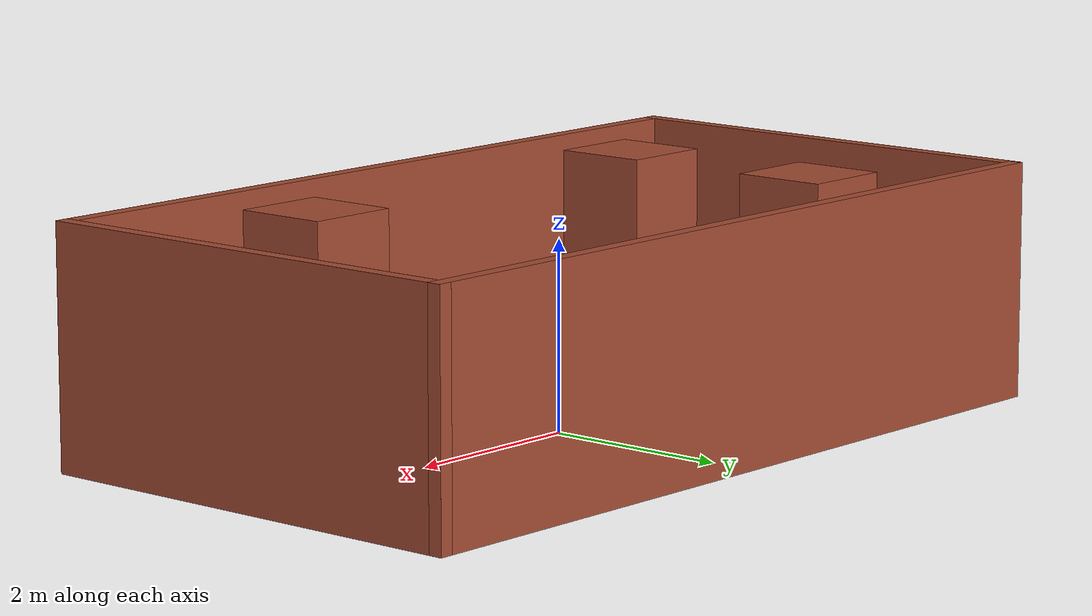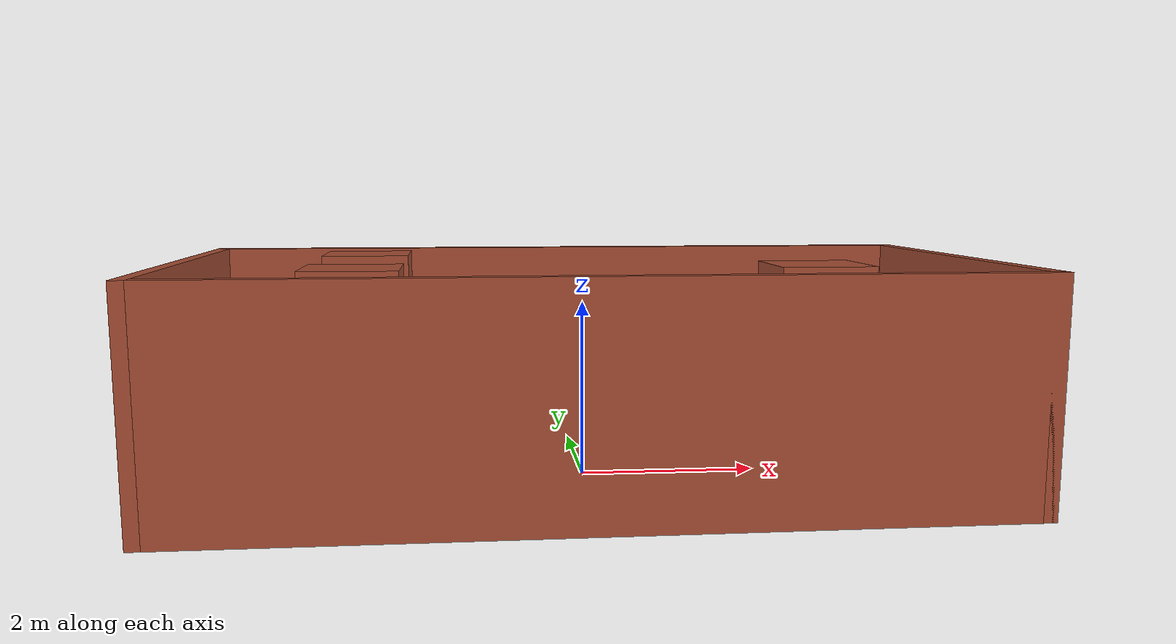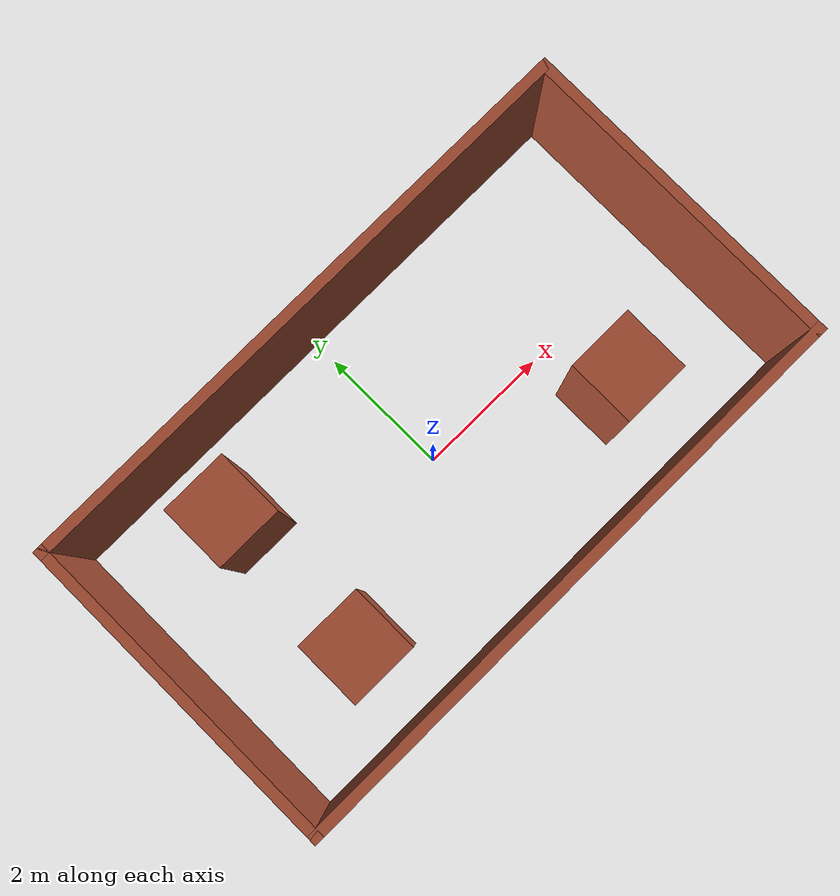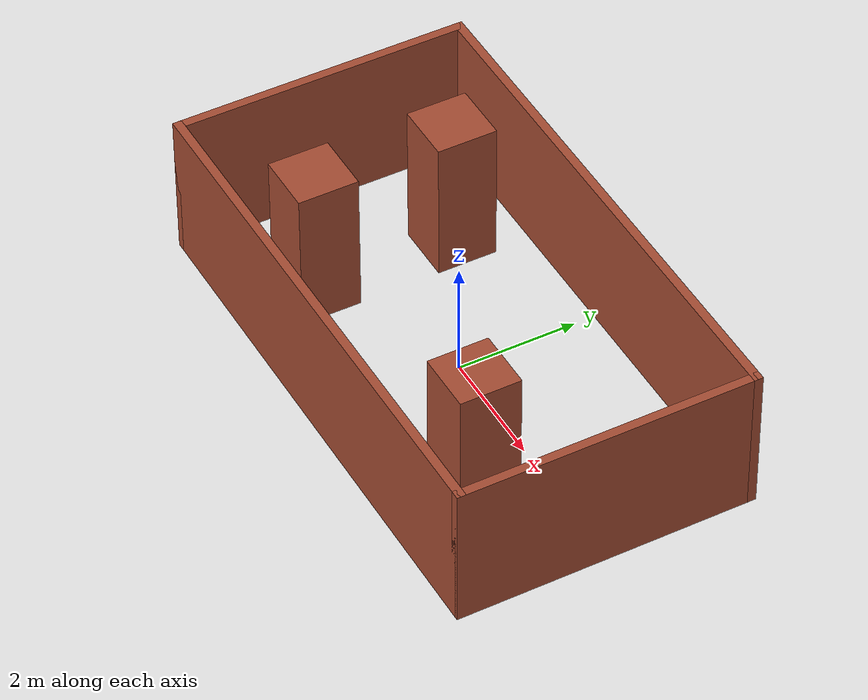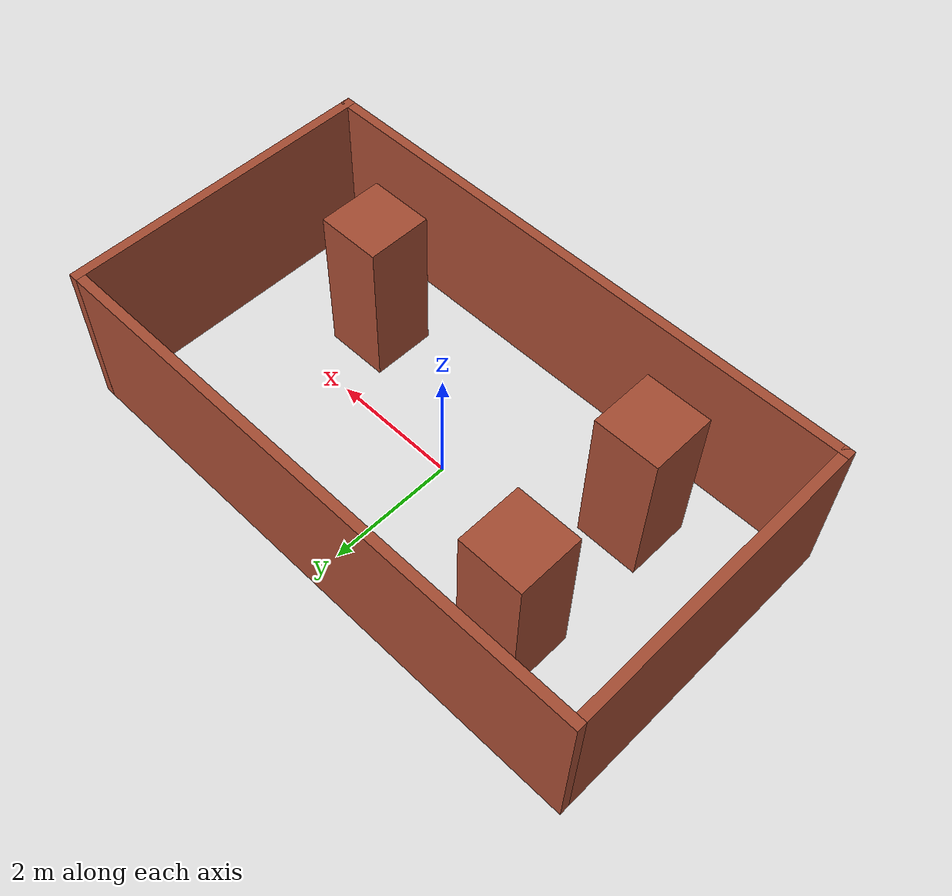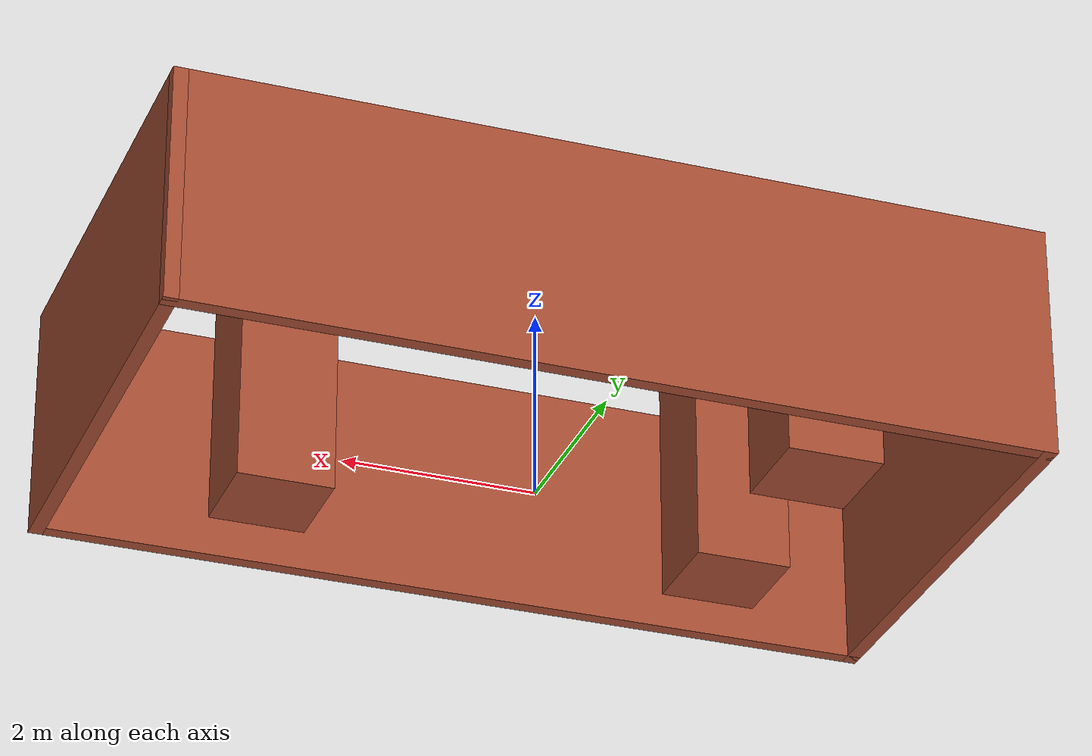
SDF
<?xml version='1.0'?>
<sdf version='1.7'>
  <model name='indoor_1'>
    <pose>0 0 0 0 -0 0</pose>
    <link name='Wall_30'>
      <collision name='Wall_30_Collision'>
        <geometry>
          <box>
            <size>9 0.15 2.5</size>
          </box>
        </geometry>
        <pose>0 0 1.25 0 -0 0</pose>
      </collision>
      <visual name='Wall_30_Visual'>
        <pose>0 0 1.25 0 -0 0</pose>
        <geometry>
          <box>
            <size>9 0.15 2.5</size>
          </box>
        </geometry>
        <material>
          <script>
            <uri>file://media/materials/scripts/gazebo.material</uri>
            <name>Gazebo/Bricks</name>
          </script>
          <ambient>1 1 1 1</ambient>
        </material>
        <meta>
          <layer>0</layer>
        </meta>
      </visual>
      <pose>0 2.425 0 0 -0 3.14159</pose>
    </link>
    <link name='Wall_31'>
      <collision name='Wall_31_Collision'>
        <geometry>
          <box>
            <size>5 0.15 2.5</size>
          </box>
        </geometry>
        <pose>0 0 1.25 0 -0 0</pose>
      </collision>
      <visual name='Wall_31_Visual'>
        <pose>0 0 1.25 0 -0 0</pose>
        <geometry>
          <box>
            <size>5 0.15 2.5</size>
          </box>
        </geometry>
        <material>
          <script>
            <uri>file://media/materials/scripts/gazebo.material</uri>
            <name>Gazebo/Bricks</name>
          </script>
          <ambient>1 1 1 1</ambient>
        </material>
        <meta>
          <layer>0</layer>
        </meta>
      </visual>
      <pose>-4.425 0 0 0 -0 -1.5708</pose>
    </link>
    <link name='Wall_32'>
      <collision name='Wall_32_Collision'>
        <geometry>
          <box>
            <size>9 0.15 2.5</size>
          </box>
        </geometry>
        <pose>0 0 1.25 0 -0 0</pose>
      </collision>
      <visual name='Wall_32_Visual'>
        <pose>0 0 1.25 0 -0 0</pose>
        <geometry>
          <box>
            <size>9 0.15 2.5</size>
          </box>
        </geometry>
        <material>
          <script>
            <uri>file://media/materials/scripts/gazebo.material</uri>
            <name>Gazebo/Bricks</name>
          </script>
          <ambient>1 1 1 1</ambient>
        </material>
        <meta>
          <layer>0</layer>
        </meta>
      </visual>
      <pose>0 -2.425 0 0 -0 0</pose>
    </link>
    <link name='Wall_33'>
      <collision name='Wall_33_Collision'>
        <geometry>
          <box>
            <size>5 0.15 2.5</size>
          </box>
        </geometry>
        <pose>0 0 1.25 0 -0 0</pose>
      </collision>
      <visual name='Wall_33_Visual'>
        <pose>0 0 1.25 0 -0 0</pose>
        <geometry>
          <box>
            <size>5 0.15 2.5</size>
          </box>
        </geometry>
        <material>
          <script>
            <uri>file://media/materials/scripts/gazebo.material</uri>
            <name>Gazebo/Bricks</name>
          </script>
          <ambient>1 1 1 1</ambient>
        </material>
        <meta>
          <layer>0</layer>
        </meta>
      </visual>
      <pose>4.425 0 0 0 -0 1.5708</pose>
    </link>
    <link name='Wall_35'>
      <collision name='Wall_35_Collision'>
        <geometry>
          <box>
            <size>1.01 1 2.5</size>
          </box>
        </geometry>
        <pose>0 0 1.25 0 -0 0</pose>
      </collision>
      <visual name='Wall_35_Visual'>
        <pose>0 0 1.25 0 -0 0</pose>
        <geometry>
          <box>
            <size>1.01 1 2.5</size>
          </box>
        </geometry>
        <material>
          <script>
            <uri>file://media/materials/scripts/gazebo.material</uri>
            <name>Gazebo/Bricks</name>
          </script>
          <ambient>1 1 1 1</ambient>
        </material>
        <meta>
          <layer>0</layer>
        </meta>
      </visual>
      <pose>-2.49014 1.23256 0 0 -0 -1.5708</pose>
    </link>
    <link name='Wall_37'>
      <collision name='Wall_37_Collision'>
        <geometry>
          <box>
            <size>1.01 1 2.5</size>
          </box>
        </geometry>
        <pose>0 0 1.25 0 -0 0</pose>
      </collision>
      <visual name='Wall_37_Visual'>
        <pose>0 0 1.25 0 -0 0</pose>
        <geometry>
          <box>
            <size>1.01 1 2.5</size>
          </box>
        </geometry>
        <material>
          <script>
            <uri>file://media/materials/scripts/gazebo.material</uri>
            <name>Gazebo/Bricks</name>
          </script>
          <ambient>1 1 1 1</ambient>
        </material>
        <meta>
          <layer>0</layer>
        </meta>
      </visual>
      <pose>-2.4814 -1.14023 0 0 -0 -1.5708</pose>
    </link>
    <link name='Wall_39'>
      <collision name='Wall_39_Collision'>
        <geometry>
          <box>
            <size>1.01 1 2.5</size>
          </box>
        </geometry>
        <pose>0 0 1.25 0 -0 0</pose>
      </collision>
      <visual name='Wall_39_Visual'>
        <pose>0 0 1.25 0 -0 0</pose>
        <geometry>
          <box>
            <size>1.01 1 2.5</size>
          </box>
        </geometry>
        <material>
          <script>
            <uri>file://media/materials/scripts/gazebo.material</uri>
            <name>Gazebo/Bricks</name>
          </script>
          <ambient>1 1 1 1</ambient>
        </material>
        <meta>
          <layer>0</layer>
        </meta>
      </visual>
      <pose>2.39279 -1.06402 0 0 -0 -1.5708</pose>
    </link>
    <static>1</static>
  </model>
</sdf>
